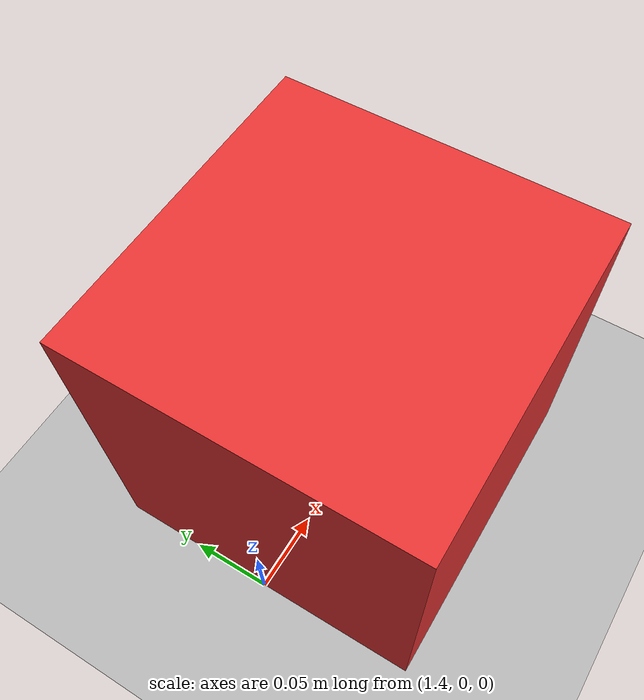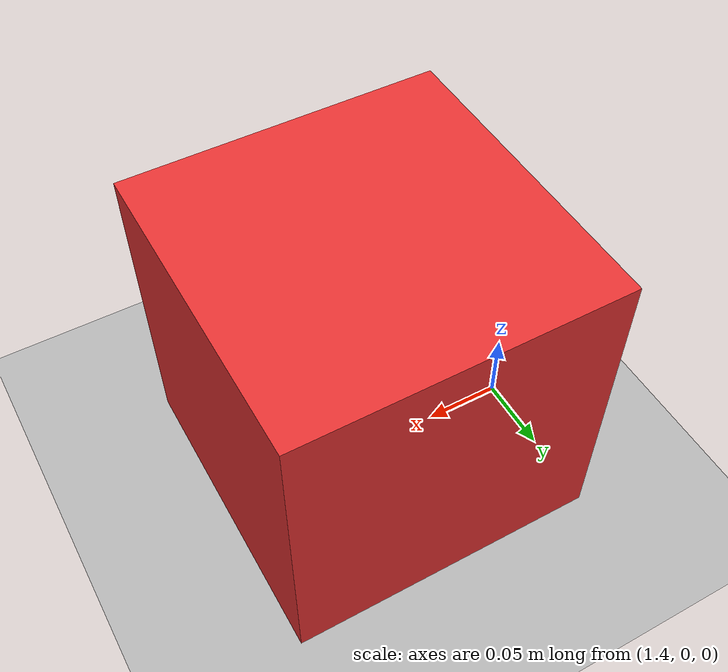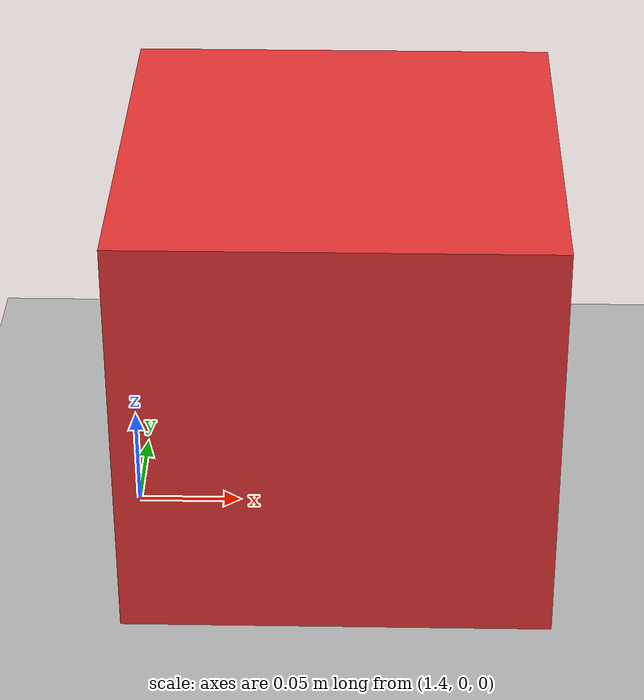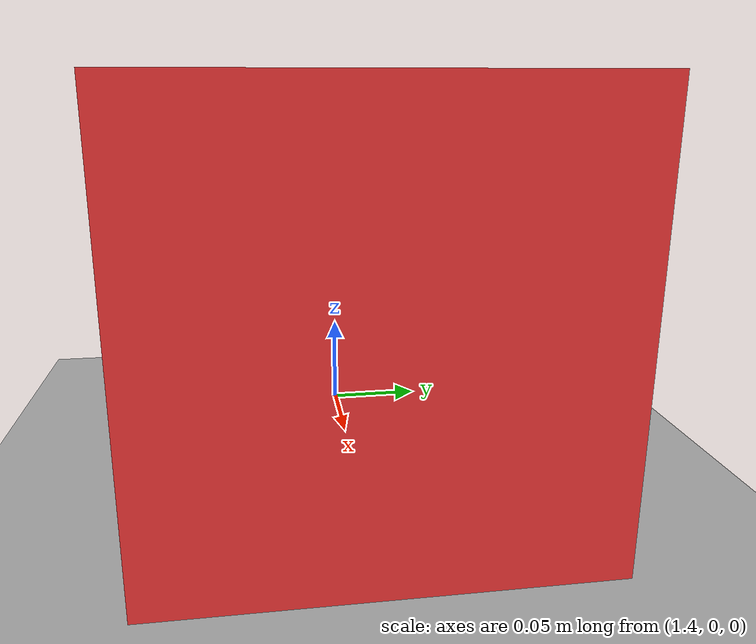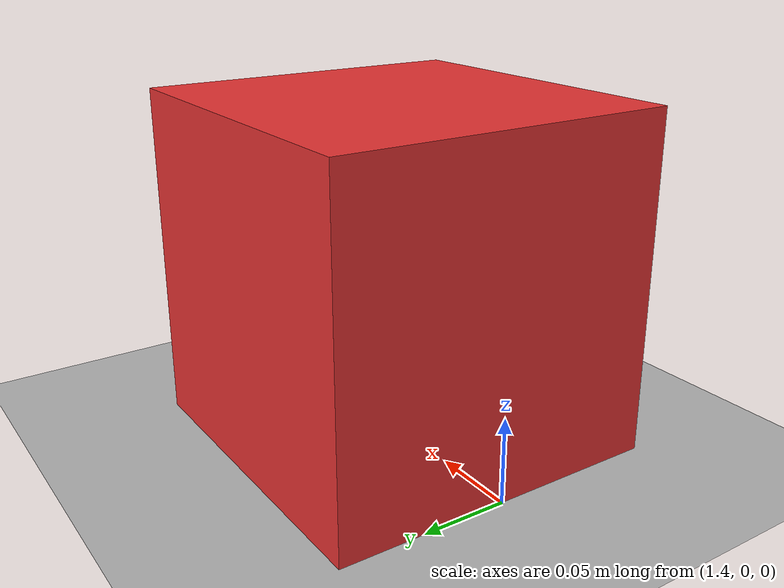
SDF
<?xml version="1.0" ?>
<sdf version="1.8">
  <world name="sorting_demo">

    <!-- 重力向量（m/s^2）。 -->
    <gravity>0 0 -9.8</gravity>

    <plugin
      filename="ignition-gazebo-physics-system"
      name="gz::sim::systems::Physics">
    </plugin>
    <plugin
      filename="ignition-gazebo-user-commands-system"
      name="gz::sim::systems::UserCommands">
    </plugin>
    <plugin
      filename="ignition-gazebo-scene-broadcaster-system"
      name="gz::sim::systems::SceneBroadcaster">
    </plugin>
    <plugin
      filename="ignition-gazebo-sensors-system"
      name="gz::sim::systems::Sensors">
    </plugin>

    <!-- 场景主光源（directional light）。 -->
    <light type="directional" name="sun">
      <cast_shadows>true</cast_shadows>
      <pose>0 0 10 0 0 0</pose>
      <diffuse>0.8 0.8 0.8 1</diffuse>
      <specular>0.2 0.2 0.2 1</specular>
      <direction>-0.5 0.1 -0.9</direction>
    </light>

    <model name="ground_plane">
      <!-- 地面：静态模型，用 plane 几何表示。 -->
      <static>true</static>
      <link name="link">
        <collision name="collision">
          <geometry>
            <plane>
              <normal>0 0 1</normal>
              <size>20 20</size>
            </plane>
          </geometry>
        </collision>
        <visual name="visual">
          <geometry>
            <plane>
              <normal>0 0 1</normal>
              <size>20 20</size>
            </plane>
          </geometry>
          <material>
            <ambient>0.7 0.7 0.7 1</ambient>
            <diffuse>0.7 0.7 0.7 1</diffuse>
          </material>
        </visual>
      </link>
    </model>

    <model name="target_box">
      <!-- 目标方块：静态模型，放在相机前方。 -->
      <static>true</static>
      <pose>1.5 0 0.1 0 0 0</pose>
      <link name="link">
        <collision name="collision">
          <geometry>
            <box>
              <size>0.2 0.2 0.2</size>
            </box>
          </geometry>
        </collision>
        <visual name="visual">
          <geometry>
            <box>
              <size>0.2 0.2 0.2</size>
            </box>
          </geometry>
          <material>
            <ambient>0.9 0.2 0.2 1</ambient>
            <diffuse>0.9 0.2 0.2 1</diffuse>
          </material>
        </visual>
      </link>
    </model>

    <model name="industrial_camera_rig">
      <!-- 相机支架：静态模型，将相机抬高到 1.2m。 -->
      <static>true</static>
      <pose>0 0 1.2 0 0 0</pose>
      <link name="camera_link">
        <sensor name="industrial_rgb" type="camera">
          <!-- 传感器相对 camera_link 的位姿（x y z roll pitch yaw）。 -->
          <pose>0 0 0 0 0 0</pose>
          <always_on>true</always_on>
          <update_rate>30</update_rate>
          <visualize>true</visualize>
          <!-- 图像话题名（Gazebo / Ignition Transport），供 ros_gz_bridge 桥接。 -->
          <topic>/sim/camera/rgb</topic>
          <camera>
            <!-- 水平视场角（弧度），1.047 rad ≈ 60°。 -->
            <horizontal_fov>1.047</horizontal_fov>
            <image>
              <!-- 输出图像分辨率与像素格式。 -->
              <width>1280</width>
              <height>720</height>
              <format>R8G8B8</format>
            </image>
            <clip>
              <!-- 裁剪平面：相机可见的最近/最远距离（米）。 -->
              <near>0.1</near>
              <far>8.0</far>
            </clip>
            <noise>
              <!-- 噪声模型：高斯噪声，用于模拟传感器误差。 -->
              <type>gaussian</type>
              <mean>0.0</mean>
              <stddev>0.001</stddev>
            </noise>
          </camera>
        </sensor>
      </link>
    </model>
  </world>
</sdf>
